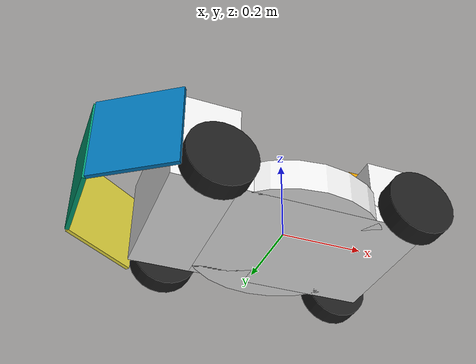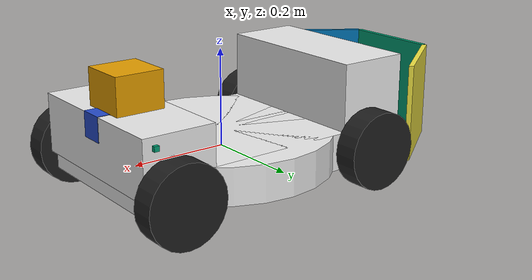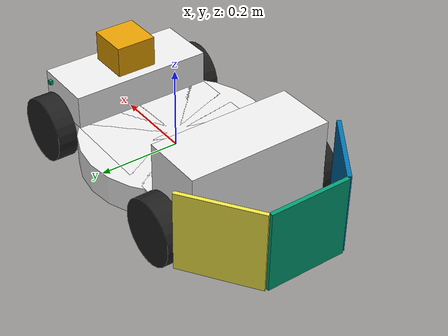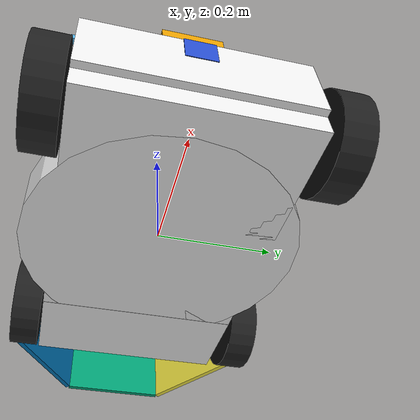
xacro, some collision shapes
<?xml version='1.0'?>
<robot name="agv" xmlns:xacro="http://www.ros.org/wiki/xacro">

    <xacro:include filename="$(find tec_proyect)/models/agv_macros.xacro" />
    <xacro:include filename="$(find tec_proyect)/models/agv_plugins.gazebo" />

    <!-- Scale the robot size to fit the environment -->
    <xacro:property name="scale" value="1.0" />

    <!-- Length along X-axis, Width along Y-axis, Height along Z-axis -->
    <xacro:property name="chasis_width" value="${scale * 0.46}" />
    <xacro:property name="chasis_length" value="${scale * 0.46}" />
    <xacro:property name="chasis_height" value="${scale * 0.3}" />
    <xacro:property name="chasis_mass" value="${scale * 20}" />

    <xacro:property name="base_x_offset" value="0.0" />

    <xacro:property name="chasis_x_pos" value="${base_x_offset/1.0}" />
    <xacro:property name="chasis_z_pos" value="${chasis_height/3.0}" />

    <xacro:property name="M_PI" value="3.1415926535897931" />

    <!-- ************************ inertia = 1/12*m(h^2+d^2) ************************ -->
    <xacro:property name="height_2" value="${chasis_height * chasis_height}" />
    <xacro:property name="width_2" value="${chasis_width * chasis_width}" />
    <xacro:property name="length_2" value="${chasis_length * chasis_length}" />
    <xacro:property name="chasis_inertia_xx" value="${chasis_mass/12.0 * (height_2 + width_2)}" />
    <xacro:property name="chasis_inertia_yy" value="${chasis_mass/12.0 * (height_2 + length_2)}" />
    <xacro:property name="chasis_inertia_zz" value="${chasis_mass/12.0 * (width_2 + length_2)}" />

    <xacro:property name="chasis_frame_width" value="${chasis_width - 2.1 * wheel_length}" />
    <xacro:property name="chasis_frame_length" value="${chasis_length * 1.2}" />
    <xacro:property name="chasis_frame_height" value="${chasis_height / 4.0}" />

    <xacro:property name="hardware_width" value="${chasis_frame_width / 1.0}" />
    <xacro:property name="hardware_length" value="${0.15}" />
    <xacro:property name="hardware_height" value="${chasis_height / 2.5}" />
    <xacro:property name="hardware_z_offset" value="${hardware_height / 2.0}" />
    <xacro:property name="hardware_x_offset" value="${base_x_offset + (chasis_length/2.0) - (hardware_length/8.5)}" />

    <xacro:property name="hardware_length_back" value="${0.15}" />
    <xacro:property name="hardware_height_2" value="${chasis_height / 1.4}" />
    <xacro:property name="hardware_z_offset_2" value="${(hardware_height_2 / 2.0) - 0.038}" />
    <xacro:property name="hardware_minx_offset" value="${base_x_offset + -1.0 * (chasis_length/2.0) - (hardware_length_back / 8.5)}" />

    <xacro:property name="artag_x_pos" value= "${hardware_minx_offset - 0.23}" />
    <xacro:property name="artag_x_pos_1" value= "${hardware_minx_offset - 0.147}" />
    <xacro:property name="artag_y_pos" value= "${(chasis_width / 2.0) - 0.07}" />

    <!-- ************************ Wheels parameters ************************ -->
    <xacro:property name="wheel_length" value="${scale * 0.05}" />
    <xacro:property name="wheel_radius" value="${scale * 0.08}" />
    <xacro:property name="wheel_mass" value="${scale * 1}" />
    <xacro:property name="wheel_x_offset" value="${base_x_offset + chasis_length/2.0}" />
    <xacro:property name="wheel_y_offset" value="${chasis_width/2.0 - wheel_length/2.0}" />

    <!-- ************************ camera parameters ************************ -->
    <xacro:property name="camera_width" value="0.05" />
    <xacro:property name="camera_length" value="0.05" />
    <xacro:property name="camera_height" value="0.05" />
    <xacro:property name="camera_x_offset" value="${hardware_length/2.0 + hardware_x_offset - camera_length/2.0 + 0.001}" />
    <xacro:property name="camera_z_offset" value="${hardware_height - camera_height/2.0 + 0.001}" />

    <!-- ************************ Laser parameters ************************ -->
    <xacro:property name="laser_width" value="0.1" />
    <xacro:property name="laser_length" value="0.1" />
    <xacro:property name="laser_height" value="0.1" />
    <xacro:property name="laser_x_offset" value="${hardware_x_offset}" />
    <xacro:property name="laser_z_offset" value="${hardware_height + 0.025}" />

    <!-- ************************ Sonar parameters ************************ -->
    <xacro:property name="sonar_y_offset" value="${wheel_y_offset - wheel_length/2.0}" />

    <!-- ************************ Chasis ************************ -->
    <link name="base_link"/>
    <joint name="base_link_joint" type="fixed">
        <origin xyz="0 0 0" rpy="0 0 0" />
        <parent link="base_link" />
        <child link="chasis" />
    </joint>

    <!-- ************************ Chasis of avg ************************ -->
    <link name='chasis'>
        <inertial>
            <mass value="${chasis_mass}"/>
            <origin xyz="${chasis_x_pos} 0 ${chasis_z_pos}" rpy=" 0 0 0"/>
            <inertia
            ixx="${chasis_inertia_xx}" ixy="0" ixz="0"
            iyy="${chasis_inertia_yy}" iyz="0"
            izz="${chasis_inertia_zz}" />
        </inertial>

        <collision>
            <origin xyz="${base_x_offset} 0 0" rpy=" 0 0 0"/>
            <geometry>
                <box size="${chasis_frame_length} ${chasis_frame_width} ${chasis_frame_height}"/>
            </geometry>
        </collision>

        <visual>
            <origin xyz="${base_x_offset} 0 0" rpy=" 0 0 0"/>
            <geometry>
                <box size="${chasis_frame_length} ${chasis_frame_width} ${chasis_frame_height}"/>
            </geometry>
        </visual>

        <!-- ************************ circular part of chasis ************************ -->
        <collision>
            <origin xyz="${base_x_offset} 0 0" rpy=" 0 0 0"/>
            <geometry>
                <cylinder radius="${chasis_width/2.0}" length="${chasis_frame_height}"/>
            </geometry>
        </collision>

        <visual>
            <origin xyz="${base_x_offset} 0 0" rpy=" 0 0 0"/>
            <geometry>
                <cylinder radius="${chasis_width/2.0}" length="${chasis_frame_height}"/>
            </geometry>
        </visual>

        <!-- ************************ box for the hardware ************************ -->
        <collision>
            <origin xyz="${hardware_x_offset} 0 ${hardware_z_offset}" rpy=" 0 0 0"/>
            <geometry>
                <box size="${hardware_length} ${hardware_width} ${hardware_height}"/>
            </geometry>
        </collision>

        <visual>
            <origin xyz="${hardware_x_offset} 0 ${hardware_z_offset}" rpy=" 0 0 0"/>
            <geometry>
                <box size="${hardware_length} ${hardware_width} ${hardware_height}"/>
            </geometry>
        </visual>

        <!-- ************************ box for back side ************************ -->
        <collision>
            <origin xyz="${hardware_minx_offset} 0 ${hardware_z_offset_2}" rpy=" 0 0 0"/>
            <geometry>
                <box size="${hardware_length_back} ${hardware_width} ${hardware_height_2}"/>
            </geometry>
        </collision>

        <visual>
            <origin xyz="${hardware_minx_offset} 0 ${hardware_z_offset_2}" rpy=" 0 0 0"/>
            <geometry>
                <box size="${hardware_length_back} ${hardware_width} ${hardware_height_2}"/>
            </geometry>
        </visual>
    </link>

        <!-- ************************ box for ARTag ************************ -->
         <!-- Tag: 6, 7, 8-->
    <link name="tag_link_1">
        <collision>
            <origin xyz="${artag_x_pos} 0 ${hardware_z_offset}" rpy="-1.5707 0.0 1.5707" />
            <geometry>
                <mesh filename="package://tec_proyect/meshes/aruco_id9.dae" />
            </geometry>
        </collision>

        <visual name="artag_agv_visual_1">
            <origin xyz="${artag_x_pos} 0 ${hardware_z_offset}" rpy="-1.5707 0.0 1.5707" />
            <geometry>
                <mesh filename="package://tec_proyect/meshes/aruco_id9.dae" />
            </geometry>
        </visual>
    </link>

    <link name="tag_link_2">
        <collision>
            <origin xyz="${artag_x_pos_1} ${artag_y_pos} ${hardware_z_offset}" rpy="-1.5707 0.0 0.61" />
            <geometry>
                <mesh filename="package://tec_proyect/meshes/aruco_id10.dae" />
            </geometry>
        </collision>

        <visual name="artag_agv_visual_2">
            <origin xyz="${artag_x_pos_1} ${artag_y_pos} ${hardware_z_offset}" rpy="-1.5707 0.0 0.61" />
            <geometry>
                <mesh filename="package://tec_proyect/meshes/aruco_id10.dae" />
            </geometry>
        </visual>
    </link>

    <link name="tag_link_3">
        <collision>
            <origin xyz="${artag_x_pos_1} -${artag_y_pos} ${hardware_z_offset}" rpy="-1.5707 1.5705 -0.61" />
            <geometry>
                <mesh filename="package://tec_proyect/meshes/aruco_id11.dae" />
            </geometry>
        </collision>

        <visual name="artag_agv_visual_3">
            <origin xyz="${artag_x_pos_1} -${artag_y_pos} ${hardware_z_offset}" rpy="-1.5707 1.5705 -0.61" />
            <geometry>
                <mesh filename="package://tec_proyect/meshes/aruco_id11.dae" />
            </geometry>
        </visual>
    </link>

    <joint name="tag_joint_1" type="fixed">
        <origin xyz="0 0 0" rpy="0 0 0"/>
        <parent link="chasis"/>
        <child link="tag_link_1"/>
    </joint>

    <joint name="tag_joint_2" type="fixed">
        <origin xyz="0 0 0" rpy="0 0 0"/>
        <parent link="chasis"/>
        <child link="tag_link_2"/>
    </joint>

    <joint name="tag_joint_3" type="fixed">
        <origin xyz="0 0 0" rpy="0 0 0"/>
        <parent link="chasis"/>
        <child link="tag_link_3"/>
    </joint>
    <!-- ************************ camera ************************ -->
    <joint name="camera_joint" type="fixed">
        <origin xyz="0 0 0" rpy="0 0 0"/>
        <parent link="chasis"/>
        <child link="camera_link"/>
    </joint>

    <link name="camera_link">
        <inertial>
            <mass value="0.1"/>
            <origin xyz="0 0 0" rpy=" 0 0 0"/>
            <inertia
                ixx="1e-6" ixy="0" ixz="0"
                iyy="1e-6" iyz="0"
                izz="1e-6"/>
        </inertial>

        <collision name="camera_collision">
            <origin xyz="0 0 0" rpy=" 0 0 0"/>
            <geometry>
                <box size="${camera_length} ${camera_width} ${camera_height}"/>
            </geometry>
        </collision>

        <visual name="camera_visual">
            <origin xyz="0 0 0" rpy=" 0 0 0"/>
            <geometry>
                <box size="${camera_length} ${camera_width} ${camera_height}"/>
            </geometry>
        </visual>
    </link>

    <joint name="camera_rgb_joint" type="fixed">
        <origin xyz="${camera_x_offset} 0 ${camera_z_offset}" rpy="0 0 0"/>
        <parent link="camera_link"/>
        <child link="camera_rgb_frame"/>
    </joint>
    <link name="camera_rgb_frame"/>

    <joint name="camera_rgb_optical_joint" type="fixed">
        <origin xyz="0 0 0" rpy="-1.5707 0 -1.5707"/>
        <parent link="camera_rgb_frame"/>
        <child link="camera_rgb_optical_frame"/>
    </joint>

    <link name="camera_rgb_optical_frame">
        <visual>
            <geometry>
                <box size="${camera_length} ${camera_width} ${camera_height}"/>
            </geometry>
        </visual>
        <collision>
            <geometry>
                <box size="${camera_length} ${camera_width} ${camera_height}"/>
            </geometry>
        </collision>
    </link>

    <!-- ************************ Laser ************************ -->
    <link name='hokuyo'>
        <pose>0 0 0 0 0 0</pose>
        <inertial>
            <mass value="0.1"/>
            <origin xyz="0 0 0" rpy=" 0 0 0"/>
            <inertia
                ixx="1e-6" ixy="0" ixz="0"
                iyy="1e-6" iyz="0"
                izz="1e-6" />
        </inertial>

        <collision name='hokuyo_collision'>
            <origin xyz="0 0 0" rpy=" 0 0 0"/>
            <geometry>
                <box size="${laser_length} ${laser_width} ${laser_height}"/>
            </geometry>
        </collision>

        <visual name='hokuyo_visual'>
            <origin xyz="0 0 0" rpy=" 0 0 0"/>
            <geometry>
                <mesh filename="package://tec_proyect/meshes/hokuyo.dae"/>
            </geometry>
        </visual>
    </link>

    <joint type="fixed" name="hokuyo_joint">
        <origin xyz="${laser_x_offset} 0 ${laser_z_offset}" rpy="0 0 0"/>
        <child link="hokuyo"/>
        <parent link="chasis"/>
        <axis xyz="0 1 0" rpy="0 0 0"/>
        <limit effort="10000" velocity="1000"/>
        <joint_properties damping="1.0" friction="1.0"/>
    </joint>

    <!-- ************************ Sonar ************************ -->
    <xacro:sonar_sensor update_rate="10" name="sonar_right" ros_topic="sonar_right" min_range="0.3" ray_count="2" field_of_view="56" parent="chasis" max_range="2">
        <origin xyz="${camera_x_offset} -${sonar_y_offset} ${chasis_z_pos}" rpy="0 0 -1.5707"/>
    </xacro:sonar_sensor>

    <xacro:sonar_sensor update_rate="10" name="sonar_left" ros_topic="sonar_left" min_range="0.3" ray_count="2" field_of_view="56" parent="chasis" max_range="2">
        <origin xyz="${camera_x_offset} ${sonar_y_offset} ${chasis_z_pos}" rpy="0 0 1.5707"/>
    </xacro:sonar_sensor>

    <!-- ************************ Wheelz and Jointz ************************ -->
    <xacro:wheelz name = "back_right" parent="chasis" mass="${wheel_mass}" radius="${wheel_radius}" leng="${wheel_length}" origin_xyz="-${wheel_x_offset} -${wheel_y_offset} 0.0" />

    <xacro:wheelz name = "back_left" parent="chasis" mass="${wheel_mass}" radius="${wheel_radius}" leng="${wheel_length}" origin_xyz="-${wheel_x_offset} ${wheel_y_offset} 0.0" />

    <xacro:wheelz name = "front_right" parent="chasis" mass="${wheel_mass}" radius="${wheel_radius}" leng="${wheel_length}" origin_xyz="${wheel_x_offset} -${wheel_y_offset} 0.0" />

    <xacro:wheelz name = "front_left" parent="chasis" mass="${wheel_mass}" radius="${wheel_radius}" leng="${wheel_length}" origin_xyz="${wheel_x_offset} ${wheel_y_offset} 0.0" />

</robot>

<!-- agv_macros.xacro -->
<robot xmlns:xacro="http://www.ros.org/xacro">
    <!-- ************************ Create wheels ************************ -->
    <xacro:macro name = "wheelz" params = "name parent mass radius leng origin_xyz">
        <link name="${name}_wheel">
            <inertial>
                <origin xyz = "0 0 0" rpy="0 1.5707 1.5707" />
                <mass value="${mass}"/>
<!--                         iyy = "${mass * (3*radius*radius+(leng*leng))/12}" iyz="0" -->
                <inertia ixx = "1e-3"    ixy="0" ixz="0"
                         iyy = "1e-3"   iyz="0"
                         izz = "1e-3" />
            </inertial>

            <visual>
                <origin xyz="0 0 0" rpy="0 1.5707 1.5707" />
                <geometry>
                    <cylinder length="${leng}" radius="${radius}"/>
                </geometry>
                <material name="Black"/>
            </visual>

            <collision>
                <origin xyz = "0 0 0" rpy="0 1.5707 1.5707" />
                <geometry>
                    <cylinder length="${leng}" radius="${radius}"/>
                </geometry>

                <surface>
                    <friction>
                        <kp>1000000.0</kp> <!-- kp and kd for rubber -->
                        <kd>100.0</kd>
                        <mu1>1.0</mu1>      <!-- Coulomb friction mus-->
                        <mu2>1.0</mu2>      <!-- Friction coefficient muk-->
                        <fdir1>1 0 0</fdir1>
                        <slip1>0.5</slip1>
                        <slip2>0.0</slip2>
                    </friction>
                </surface>
            </collision>
        </link>

        <joint name="${name}_wheel_joint" type="continuous">
            <origin xyz="${origin_xyz}" rpy="0 0 0" />
            <child link="${name}_wheel"/>
            <parent link="${parent}"/>
            <axis xyz="0 1 0" rpy="0 0 0"/>
            <anchor xyz="0 0 0"/>
            <limit effort="10000" velocity="1000"/>
            <joint_properties damping="1.0" friction="1.0"/>
        </joint>
    </xacro:macro>

    <!-- ************************ Create MaxBotix Sonar EZ4 ************************ -->
    <xacro:macro name="sonar_sensor" params="name parent *origin ros_topic update_rate min_range max_range field_of_view ray_count">
        <link name="${name}_link">
            <inertial>
                <mass value="0.001" />
                <origin xyz="0 0 0" rpy="0 0 0" />
                <inertia ixx="0.000000017" ixy="0" ixz="0" iyy="0.000000017" iyz="0" izz="0.000000017" />
            </inertial>
            <visual>
                <origin xyz="0 0 0" rpy="0 0 0" />
                <geometry>
                    <mesh filename="package://tec_proyect/meshes/max_sonar_ez4.dae"/>
                </geometry>
            </visual>

            <collision>
                <origin xyz="0 0 0" rpy="0 0 0" />
                <geometry>
                    <box size="0.01 0.01 0.01" />
                </geometry>
            </collision>
        </link>

        <joint name="${name}_sonar_joint" type="fixed">
            <xacro:insert_block name="origin" />
            <child link="${name}_link"/>
            <parent link="${parent}"/>
        </joint>

        <gazebo reference="${name}_link">
          <sensor type="ray" name="${name}">
            <always_on>true</always_on>
            <update_rate>${update_rate}</update_rate>
            <pose>0 0 0 0 0 0</pose>
            <visualize>false</visualize>
            <ray>
              <scan>
                <horizontal>
                  <samples>${ray_count}</samples>
                  <resolution>1</resolution>
                  <min_angle>-${field_of_view/2}</min_angle>
                  <max_angle> ${field_of_view/2}</max_angle>
                </horizontal>
                <vertical>
                  <samples>${ray_count}</samples>
                  <resolution>1</resolution>
                  <min_angle>-${field_of_view/2}</min_angle>
                  <max_angle> ${field_of_view/2}</max_angle>
                </vertical>
              </scan>
              <range>
                <min>${min_range}</min>
                <max>${max_range}</max>
                <resolution>0.01</resolution>
              </range>
                <noise>
                    <type>gaussian</type>
                    <mean>0.0</mean>
                    <stddev>0.01</stddev>
                </noise>
            </ray>

            <plugin name="gazebo_ros_${name}_controller" filename="libhector_gazebo_ros_sonar.so">
              <gaussianNoise>0.005</gaussianNoise>
              <topicName>${ros_topic}</topicName>
              <frameId>${name}_link</frameId>
            </plugin>
          </sensor>
        </gazebo>
    </xacro:macro>
</robot>
